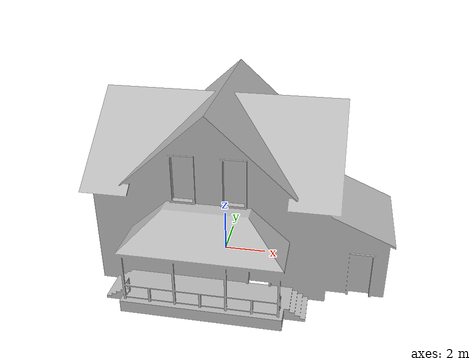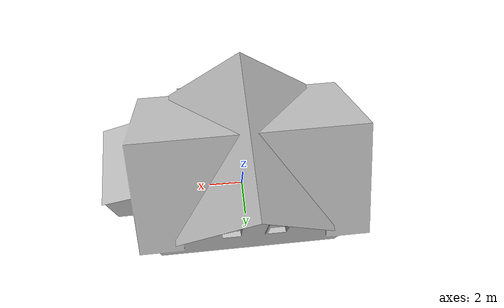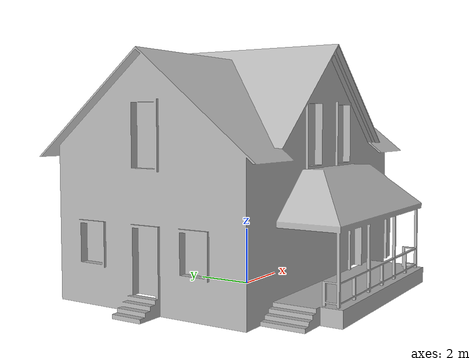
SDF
<sdf version="1.7">
  <model name="farm_house">
    <static>true</static>
    <link name="farm_house_link">
      <collision name="farm_house_collision">
        <geometry>
          <mesh>
            <uri>model://farm_house/farm_house.dae</uri>
            <scale>1 1 1</scale>
          </mesh>
        </geometry>
      </collision>
      <visual name="farm_house_visual">
        <geometry>
          <mesh>
            <uri>model://farm_house/farm_house.dae</uri>
            <scale>1 1 1</scale>
          </mesh>
        </geometry>
      </visual>
    </link>
  </model>
</sdf>
